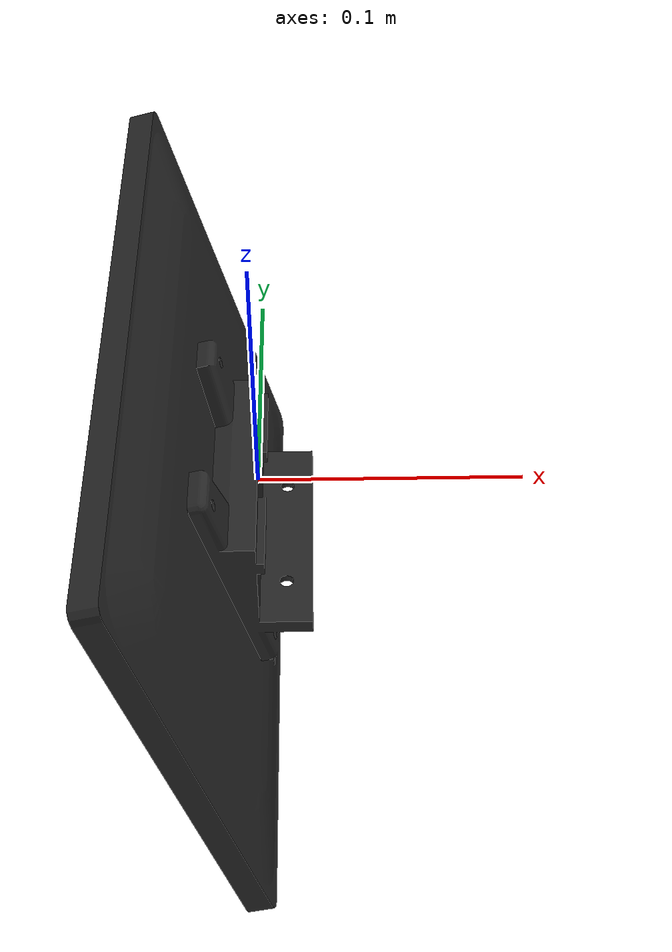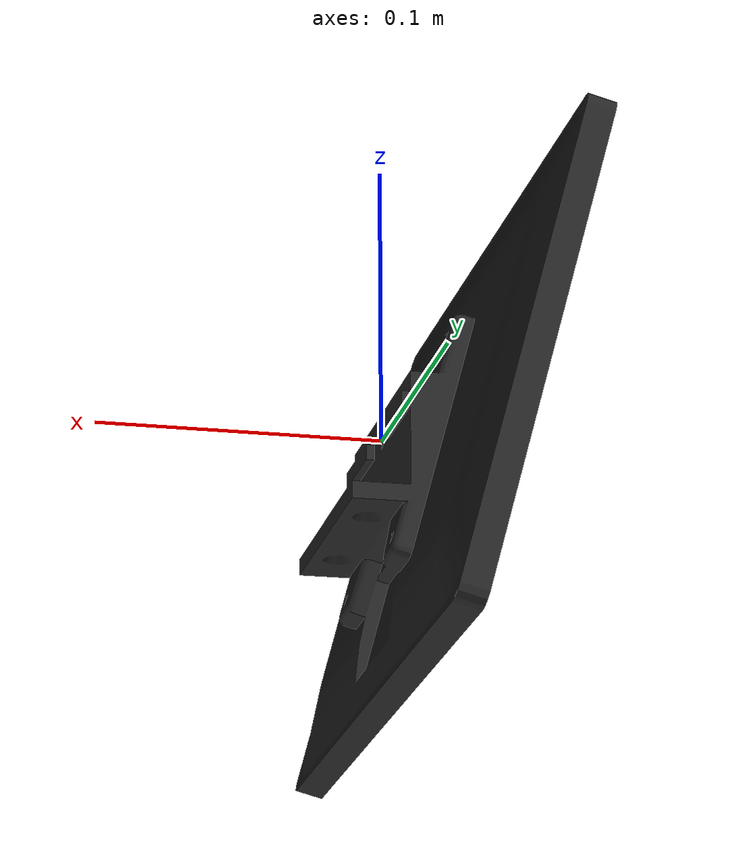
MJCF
<mujoco model="monitor">
  <default>
    <default class="visual">
      <geom group="2" type="mesh" contype="0" conaffinity="0"/>
    </default>
    <default class="collision">
      <geom group="3" type="mesh"/>
    </default>
  </default>
  <asset>
    <material name="mtl_monitor" specular="0.20000000000000004" shininess="1.0" rgba="0.14901961 0.14901961 0.14901961 1.0"/>
    <mesh file="monitor.obj"/>
  </asset>
  <worldbody>
    <body name="monitor">
      <geom material="mtl_monitor" mesh="monitor" class="visual"/>
      <geom mesh="monitor" class="collision"/>
    </body>
  </worldbody>
</mujoco>
